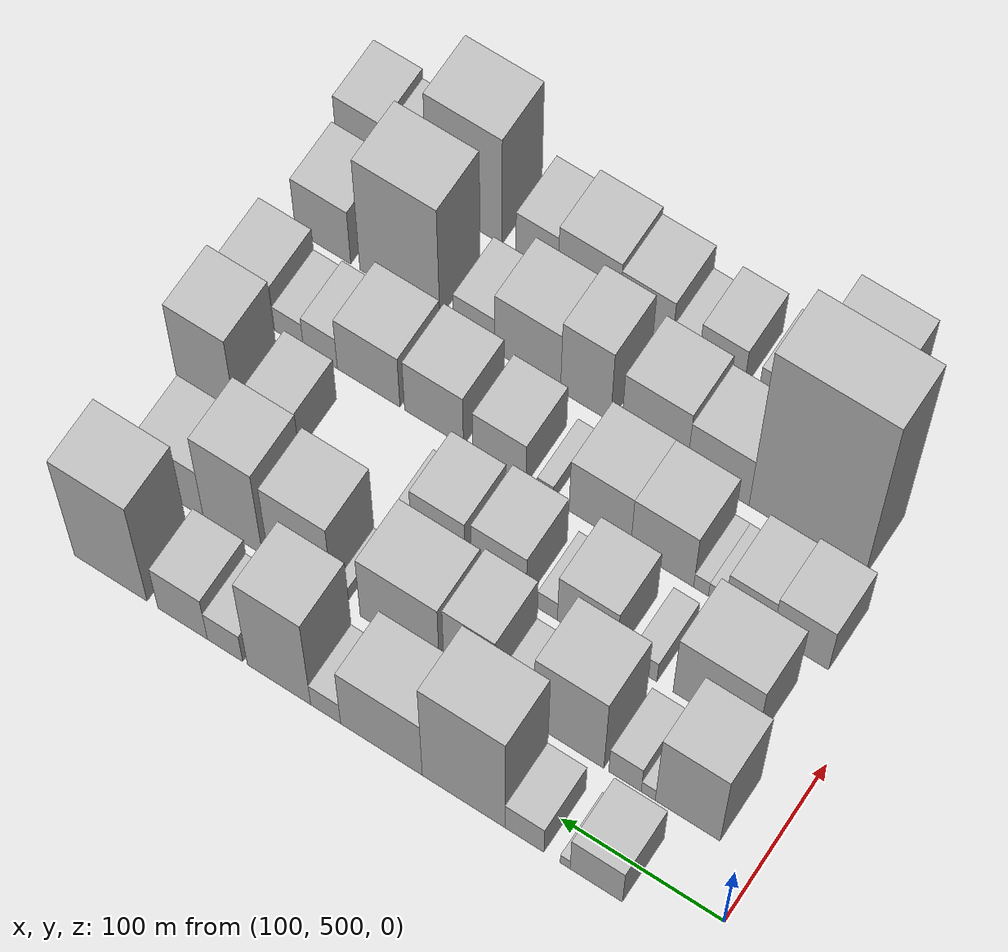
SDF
<sdf version="1.6">
 <world name="default">
  <model name="building_43">
   <static>1</static>
   <pose>100.0000 565.6743 0 0.000000 0.000000 0.000000</pose>
   <link name="link">
    <pose>0 0 27.00 0 0 0</pose>
    <collision name="collision"><geometry><box><size>40.0000 32.1906 54.0000</size></box></geometry></collision>
    <visual name="visual">
     <cast_shadows>0</cast_shadows>
     <geometry><box><size>40.0000 32.1906 54.0000</size></box></geometry>
     <material>
      <script>
       <uri>model://HANNAS_wall/materials/scripts</uri>
       <uri>model://HANNAS_wall/materials/textures</uri>
       <name>vrc/HANNAS_wall</name>
      </script>
     </material>
    </visual>
   </link>
  </model>
  <model name="building_44">
   <static>1</static>
   <pose>100.0000 584.8104 0 0.000000 0.000000 0.000000</pose>
   <link name="link">
    <pose>0 0 7.50 0 0 0</pose>
    <collision name="collision"><geometry><box><size>40.0000 6.0816 15.0000</size></box></geometry></collision>
    <visual name="visual">
     <cast_shadows>0</cast_shadows>
     <geometry><box><size>40.0000 6.0816 15.0000</size></box></geometry>
     <material>
      <script>
       <uri>model://HANNAS_wall/materials/scripts</uri>
       <uri>model://HANNAS_wall/materials/textures</uri>
       <name>vrc/HANNAS_wall</name>
      </script>
     </material>
    </visual>
   </link>
  </model>
  <model name="building_45">
   <static>1</static>
   <pose>100.0000 609.8713 0 0.000000 0.000000 0.000000</pose>
   <link name="link">
    <pose>0 0 21.00 0 0 0</pose>
    <collision name="collision"><geometry><box><size>40.0000 24.0401 42.0000</size></box></geometry></collision>
    <visual name="visual">
     <cast_shadows>0</cast_shadows>
     <geometry><box><size>40.0000 24.0401 42.0000</size></box></geometry>
     <material>
      <script>
       <uri>model://HANNAS_wall/materials/scripts</uri>
       <uri>model://HANNAS_wall/materials/textures</uri>
       <name>vrc/HANNAS_wall</name>
      </script>
     </material>
    </visual>
   </link>
  </model>
  <model name="building_46">
   <static>1</static>
   <pose>100.0000 647.6481 0 0.000000 0.000000 0.000000</pose>
   <link name="link">
    <pose>0 0 75.00 0 0 0</pose>
    <collision name="collision"><geometry><box><size>40.0000 51.5135 150.0000</size></box></geometry></collision>
    <visual name="visual">
     <cast_shadows>0</cast_shadows>
     <geometry><box><size>40.0000 51.5135 150.0000</size></box></geometry>
     <material>
      <script>
       <uri>model://HANNAS_wall/materials/scripts</uri>
       <uri>model://HANNAS_wall/materials/textures</uri>
       <name>vrc/HANNAS_wall</name>
      </script>
     </material>
    </visual>
   </link>
  </model>
  <model name="building_47">
   <static>1</static>
   <pose>100.0000 699.0463 0 0.000000 0.000000 0.000000</pose>
   <link name="link">
    <pose>0 0 43.50 0 0 0</pose>
    <collision name="collision"><geometry><box><size>40.0000 51.2830 87.0000</size></box></geometry></collision>
    <visual name="visual">
     <cast_shadows>0</cast_shadows>
     <geometry><box><size>40.0000 51.2830 87.0000</size></box></geometry>
     <material>
      <script>
       <uri>model://HANNAS_wall/materials/scripts</uri>
       <uri>model://HANNAS_wall/materials/textures</uri>
       <name>vrc/HANNAS_wall</name>
      </script>
     </material>
    </visual>
   </link>
  </model>
  <model name="building_48">
   <static>1</static>
   <pose>100.0000 734.1501 0 0.000000 0.000000 0.000000</pose>
   <link name="link">
    <pose>0 0 16.50 0 0 0</pose>
    <collision name="collision"><geometry><box><size>40.0000 18.9245 33.0000</size></box></geometry></collision>
    <visual name="visual">
     <cast_shadows>0</cast_shadows>
     <geometry><box><size>40.0000 18.9245 33.0000</size></box></geometry>
     <material>
      <script>
       <uri>model://HANNAS_wall/materials/scripts</uri>
       <uri>model://HANNAS_wall/materials/textures</uri>
       <name>vrc/HANNAS_wall</name>
      </script>
     </material>
    </visual>
   </link>
  </model>
  <model name="building_49">
   <static>1</static>
   <pose>100.0000 763.7258 0 0.000000 0.000000 0.000000</pose>
   <link name="link">
    <pose>0 0 66.00 0 0 0</pose>
    <collision name="collision"><geometry><box><size>40.0000 40.2271 132.0000</size></box></geometry></collision>
    <visual name="visual">
     <cast_shadows>0</cast_shadows>
     <geometry><box><size>40.0000 40.2271 132.0000</size></box></geometry>
     <material>
      <script>
       <uri>model://HANNAS_wall/materials/scripts</uri>
       <uri>model://HANNAS_wall/materials/textures</uri>
       <name>vrc/HANNAS_wall</name>
      </script>
     </material>
    </visual>
   </link>
  </model>
  <model name="building_50">
   <static>1</static>
   <pose>100.0000 798.1273 0 0.000000 0.000000 0.000000</pose>
   <link name="link">
    <pose>0 0 21.00 0 0 0</pose>
    <collision name="collision"><geometry><box><size>40.0000 22.5759 42.0000</size></box></geometry></collision>
    <visual name="visual">
     <cast_shadows>0</cast_shadows>
     <geometry><box><size>40.0000 22.5759 42.0000</size></box></geometry>
     <material>
      <script>
       <uri>model://HANNAS_wall/materials/scripts</uri>
       <uri>model://HANNAS_wall/materials/textures</uri>
       <name>vrc/HANNAS_wall</name>
      </script>
     </material>
    </visual>
   </link>
  </model>
  <model name="building_51">
   <static>1</static>
   <pose>100.0000 825.2899 0 0.000000 0.000000 0.000000</pose>
   <link name="link">
    <pose>0 0 31.50 0 0 0</pose>
    <collision name="collision"><geometry><box><size>40.0000 31.7492 63.0000</size></box></geometry></collision>
    <visual name="visual">
     <cast_shadows>0</cast_shadows>
     <geometry><box><size>40.0000 31.7492 63.0000</size></box></geometry>
     <material>
      <script>
       <uri>model://HANNAS_wall/materials/scripts</uri>
       <uri>model://HANNAS_wall/materials/textures</uri>
       <name>vrc/HANNAS_wall</name>
      </script>
     </material>
    </visual>
   </link>
  </model>
  <model name="building_52">
   <static>1</static>
   <pose>100.0000 871.6478 0 0.000000 0.000000 0.000000</pose>
   <link name="link">
    <pose>0 0 72.00 0 0 0</pose>
    <collision name="collision"><geometry><box><size>40.0000 46.9665 144.0000</size></box></geometry></collision>
    <visual name="visual">
     <cast_shadows>0</cast_shadows>
     <geometry><box><size>40.0000 46.9665 144.0000</size></box></geometry>
     <material>
      <script>
       <uri>model://HANNAS_wall/materials/scripts</uri>
       <uri>model://HANNAS_wall/materials/textures</uri>
       <name>vrc/HANNAS_wall</name>
      </script>
     </material>
    </visual>
   </link>
  </model>
  <model name="building_100">
   <static>1</static>
   <pose>155.0000 544.5997 0 0.000000 0.000000 0.000000</pose>
   <link name="link">
    <pose>0 0 54.00 0 0 0</pose>
    <collision name="collision"><geometry><box><size>40.0000 39.9034 108.0000</size></box></geometry></collision>
    <visual name="visual">
     <cast_shadows>0</cast_shadows>
     <geometry><box><size>40.0000 39.9034 108.0000</size></box></geometry>
     <material>
      <script>
       <uri>model://HANNAS_wall/materials/scripts</uri>
       <uri>model://HANNAS_wall/materials/textures</uri>
       <name>vrc/HANNAS_wall</name>
      </script>
     </material>
    </visual>
   </link>
  </model>
  <model name="building_101">
   <static>1</static>
   <pose>155.0000 568.8679 0 0.000000 0.000000 0.000000</pose>
   <link name="link">
    <pose>0 0 9.00 0 0 0</pose>
    <collision name="collision"><geometry><box><size>40.0000 8.6330 18.0000</size></box></geometry></collision>
    <visual name="visual">
     <cast_shadows>0</cast_shadows>
     <geometry><box><size>40.0000 8.6330 18.0000</size></box></geometry>
     <material>
      <script>
       <uri>model://HANNAS_wall/materials/scripts</uri>
       <uri>model://HANNAS_wall/materials/textures</uri>
       <name>vrc/HANNAS_wall</name>
      </script>
     </material>
    </visual>
   </link>
  </model>
  <model name="building_102">
   <static>1</static>
   <pose>155.0000 583.2130 0 0.000000 0.000000 0.000000</pose>
   <link name="link">
    <pose>0 0 19.50 0 0 0</pose>
    <collision name="collision"><geometry><box><size>40.0000 20.0573 39.0000</size></box></geometry></collision>
    <visual name="visual">
     <cast_shadows>0</cast_shadows>
     <geometry><box><size>40.0000 20.0573 39.0000</size></box></geometry>
     <material>
      <script>
       <uri>model://HANNAS_wall/materials/scripts</uri>
       <uri>model://HANNAS_wall/materials/textures</uri>
       <name>vrc/HANNAS_wall</name>
      </script>
     </material>
    </visual>
   </link>
  </model>
  <model name="building_103">
   <static>1</static>
   <pose>155.0000 618.1968 0 0.000000 0.000000 0.000000</pose>
   <link name="link">
    <pose>0 0 55.50 0 0 0</pose>
    <collision name="collision"><geometry><box><size>40.0000 43.9105 111.0000</size></box></geometry></collision>
    <visual name="visual">
     <cast_shadows>0</cast_shadows>
     <geometry><box><size>40.0000 43.9105 111.0000</size></box></geometry>
     <material>
      <script>
       <uri>model://HANNAS_wall/materials/scripts</uri>
       <uri>model://HANNAS_wall/materials/textures</uri>
       <name>vrc/HANNAS_wall</name>
      </script>
     </material>
    </visual>
   </link>
  </model>
  <model name="building_104">
   <static>1</static>
   <pose>155.0000 653.5664 0 0.000000 0.000000 0.000000</pose>
   <link name="link">
    <pose>0 0 18.00 0 0 0</pose>
    <collision name="collision"><geometry><box><size>40.0000 20.8287 36.0000</size></box></geometry></collision>
    <visual name="visual">
     <cast_shadows>0</cast_shadows>
     <geometry><box><size>40.0000 20.8287 36.0000</size></box></geometry>
     <material>
      <script>
       <uri>model://HANNAS_wall/materials/scripts</uri>
       <uri>model://HANNAS_wall/materials/textures</uri>
       <name>vrc/HANNAS_wall</name>
      </script>
     </material>
    </visual>
   </link>
  </model>
  <model name="building_105">
   <static>1</static>
   <pose>155.0000 680.0605 0 0.000000 0.000000 0.000000</pose>
   <link name="link">
    <pose>0 0 48.00 0 0 0</pose>
    <collision name="collision"><geometry><box><size>40.0000 32.1594 96.0000</size></box></geometry></collision>
    <visual name="visual">
     <cast_shadows>0</cast_shadows>
     <geometry><box><size>40.0000 32.1594 96.0000</size></box></geometry>
     <material>
      <script>
       <uri>model://HANNAS_wall/materials/scripts</uri>
       <uri>model://HANNAS_wall/materials/textures</uri>
       <name>vrc/HANNAS_wall</name>
      </script>
     </material>
    </visual>
   </link>
  </model>
  <model name="building_106">
   <static>1</static>
   <pose>155.0000 724.1629 0 0.000000 0.000000 0.000000</pose>
   <link name="link">
    <pose>0 0 45.00 0 0 0</pose>
    <collision name="collision"><geometry><box><size>40.0000 50.0453 90.0000</size></box></geometry></collision>
    <visual name="visual">
     <cast_shadows>0</cast_shadows>
     <geometry><box><size>40.0000 50.0453 90.0000</size></box></geometry>
     <material>
      <script>
       <uri>model://HANNAS_wall/materials/scripts</uri>
       <uri>model://HANNAS_wall/materials/textures</uri>
       <name>vrc/HANNAS_wall</name>
      </script>
     </material>
    </visual>
   </link>
  </model>
  <model name="building_107">
   <static>1</static>
   <pose>155.0000 762.9316 0 0.000000 0.000000 0.000000</pose>
   <link name="link">
    <pose>0 0 9.00 0 0 0</pose>
    <collision name="collision"><geometry><box><size>40.0000 7.4922 18.0000</size></box></geometry></collision>
    <visual name="visual">
     <cast_shadows>0</cast_shadows>
     <geometry><box><size>40.0000 7.4922 18.0000</size></box></geometry>
     <material>
      <script>
       <uri>model://HANNAS_wall/materials/scripts</uri>
       <uri>model://HANNAS_wall/materials/textures</uri>
       <name>vrc/HANNAS_wall</name>
      </script>
     </material>
    </visual>
   </link>
  </model>
  <model name="building_108">
   <static>1</static>
   <pose>155.0000 787.2311 0 0.000000 0.000000 0.000000</pose>
   <link name="link">
    <pose>0 0 54.00 0 0 0</pose>
    <collision name="collision"><geometry><box><size>40.0000 41.1067 108.0000</size></box></geometry></collision>
    <visual name="visual">
     <cast_shadows>0</cast_shadows>
     <geometry><box><size>40.0000 41.1067 108.0000</size></box></geometry>
     <material>
      <script>
       <uri>model://HANNAS_wall/materials/scripts</uri>
       <uri>model://HANNAS_wall/materials/textures</uri>
       <name>vrc/HANNAS_wall</name>
      </script>
     </material>
    </visual>
   </link>
  </model>
  <model name="building_109">
   <static>1</static>
   <pose>155.0000 830.8037 0 0.000000 0.000000 0.000000</pose>
   <link name="link">
    <pose>0 0 60.00 0 0 0</pose>
    <collision name="collision"><geometry><box><size>40.0000 38.0385 120.0000</size></box></geometry></collision>
    <visual name="visual">
     <cast_shadows>0</cast_shadows>
     <geometry><box><size>40.0000 38.0385 120.0000</size></box></geometry>
     <material>
      <script>
       <uri>model://HANNAS_wall/materials/scripts</uri>
       <uri>model://HANNAS_wall/materials/textures</uri>
       <name>vrc/HANNAS_wall</name>
      </script>
     </material>
    </visual>
   </link>
  </model>
  <model name="building_110">
   <static>1</static>
   <pose>155.0000 869.2071 0 0.000000 0.000000 0.000000</pose>
   <link name="link">
    <pose>0 0 34.50 0 0 0</pose>
    <collision name="collision"><geometry><box><size>40.0000 38.7683 69.0000</size></box></geometry></collision>
    <visual name="visual">
     <cast_shadows>0</cast_shadows>
     <geometry><box><size>40.0000 38.7683 69.0000</size></box></geometry>
     <material>
      <script>
       <uri>model://HANNAS_wall/materials/scripts</uri>
       <uri>model://HANNAS_wall/materials/textures</uri>
       <name>vrc/HANNAS_wall</name>
      </script>
     </material>
    </visual>
   </link>
  </model>
  <model name="building_111">
   <static>1</static>
   <pose>155.0000 892.3155 0 0.000000 0.000000 0.000000</pose>
   <link name="link">
    <pose>0 0 9.00 0 0 0</pose>
    <collision name="collision"><geometry><box><size>40.0000 7.4485 18.0000</size></box></geometry></collision>
    <visual name="visual">
     <cast_shadows>0</cast_shadows>
     <geometry><box><size>40.0000 7.4485 18.0000</size></box></geometry>
     <material>
      <script>
       <uri>model://HANNAS_wall/materials/scripts</uri>
       <uri>model://HANNAS_wall/materials/textures</uri>
       <name>vrc/HANNAS_wall</name>
      </script>
     </material>
    </visual>
   </link>
  </model>
  <model name="building_153">
   <static>1</static>
   <pose>210.0000 562.4743 0 0.000000 0.000000 0.000000</pose>
   <link name="link">
    <pose>0 0 43.50 0 0 0</pose>
    <collision name="collision"><geometry><box><size>40.0000 51.7983 87.0000</size></box></geometry></collision>
    <visual name="visual">
     <cast_shadows>0</cast_shadows>
     <geometry><box><size>40.0000 51.7983 87.0000</size></box></geometry>
     <material>
      <script>
       <uri>model://HANNAS_wall/materials/scripts</uri>
       <uri>model://HANNAS_wall/materials/textures</uri>
       <name>vrc/HANNAS_wall</name>
      </script>
     </material>
    </visual>
   </link>
  </model>
  <model name="building_154">
   <static>1</static>
   <pose>210.0000 606.4524 0 0.000000 0.000000 0.000000</pose>
   <link name="link">
    <pose>0 0 15.00 0 0 0</pose>
    <collision name="collision"><geometry><box><size>40.0000 16.1579 30.0000</size></box></geometry></collision>
    <visual name="visual">
     <cast_shadows>0</cast_shadows>
     <geometry><box><size>40.0000 16.1579 30.0000</size></box></geometry>
     <material>
      <script>
       <uri>model://HANNAS_wall/materials/scripts</uri>
       <uri>model://HANNAS_wall/materials/textures</uri>
       <name>vrc/HANNAS_wall</name>
      </script>
     </material>
    </visual>
   </link>
  </model>
  <model name="building_155">
   <static>1</static>
   <pose>210.0000 642.1052 0 0.000000 0.000000 0.000000</pose>
   <link name="link">
    <pose>0 0 34.50 0 0 0</pose>
    <collision name="collision"><geometry><box><size>40.0000 37.1477 69.0000</size></box></geometry></collision>
    <visual name="visual">
     <cast_shadows>0</cast_shadows>
     <geometry><box><size>40.0000 37.1477 69.0000</size></box></geometry>
     <material>
      <script>
       <uri>model://HANNAS_wall/materials/scripts</uri>
       <uri>model://HANNAS_wall/materials/textures</uri>
       <name>vrc/HANNAS_wall</name>
      </script>
     </material>
    </visual>
   </link>
  </model>
  <model name="building_156">
   <static>1</static>
   <pose>210.0000 666.9940 0 0.000000 0.000000 0.000000</pose>
   <link name="link">
    <pose>0 0 13.50 0 0 0</pose>
    <collision name="collision"><geometry><box><size>40.0000 12.6298 27.0000</size></box></geometry></collision>
    <visual name="visual">
     <cast_shadows>0</cast_shadows>
     <geometry><box><size>40.0000 12.6298 27.0000</size></box></geometry>
     <material>
      <script>
       <uri>model://HANNAS_wall/materials/scripts</uri>
       <uri>model://HANNAS_wall/materials/textures</uri>
       <name>vrc/HANNAS_wall</name>
      </script>
     </material>
    </visual>
   </link>
  </model>
  <model name="building_157">
   <static>1</static>
   <pose>210.0000 697.7016 0 0.000000 0.000000 0.000000</pose>
   <link name="link">
    <pose>0 0 33.00 0 0 0</pose>
    <collision name="collision"><geometry><box><size>40.0000 34.7854 66.0000</size></box></geometry></collision>
    <visual name="visual">
     <cast_shadows>0</cast_shadows>
     <geometry><box><size>40.0000 34.7854 66.0000</size></box></geometry>
     <material>
      <script>
       <uri>model://HANNAS_wall/materials/scripts</uri>
       <uri>model://HANNAS_wall/materials/textures</uri>
       <name>vrc/HANNAS_wall</name>
      </script>
     </material>
    </visual>
   </link>
  </model>
  <model name="building_158">
   <static>1</static>
   <pose>210.0000 736.3180 0 0.000000 0.000000 0.000000</pose>
   <link name="link">
    <pose>0 0 30.00 0 0 0</pose>
    <collision name="collision"><geometry><box><size>40.0000 34.4473 60.0000</size></box></geometry></collision>
    <visual name="visual">
     <cast_shadows>0</cast_shadows>
     <geometry><box><size>40.0000 34.4473 60.0000</size></box></geometry>
     <material>
      <script>
       <uri>model://HANNAS_wall/materials/scripts</uri>
       <uri>model://HANNAS_wall/materials/textures</uri>
       <name>vrc/HANNAS_wall</name>
      </script>
     </material>
    </visual>
   </link>
  </model>
  <model name="building_159">
   <static>1</static>
   <pose>210.0000 762.0292 0 0.000000 0.000000 0.000000</pose>
   <link name="link">
    <pose>0 0 7.50 0 0 0</pose>
    <collision name="collision"><geometry><box><size>40.0000 6.9751 15.0000</size></box></geometry></collision>
    <visual name="visual">
     <cast_shadows>0</cast_shadows>
     <geometry><box><size>40.0000 6.9751 15.0000</size></box></geometry>
     <material>
      <script>
       <uri>model://HANNAS_wall/materials/scripts</uri>
       <uri>model://HANNAS_wall/materials/textures</uri>
       <name>vrc/HANNAS_wall</name>
      </script>
     </material>
    </visual>
   </link>
  </model>
  <model name="building_160">
   <static>1</static>
   <pose>210.0000 843.7794 0 0.000000 0.000000 0.000000</pose>
   <link name="link">
    <pose>0 0 28.50 0 0 0</pose>
    <collision name="collision"><geometry><box><size>40.0000 30.8418 57.0000</size></box></geometry></collision>
    <visual name="visual">
     <cast_shadows>0</cast_shadows>
     <geometry><box><size>40.0000 30.8418 57.0000</size></box></geometry>
     <material>
      <script>
       <uri>model://HANNAS_wall/materials/scripts</uri>
       <uri>model://HANNAS_wall/materials/textures</uri>
       <name>vrc/HANNAS_wall</name>
      </script>
     </material>
    </visual>
   </link>
  </model>
  <model name="building_161">
   <static>1</static>
   <pose>210.0000 885.2288 0 0.000000 0.000000 0.000000</pose>
   <link name="link">
    <pose>0 0 57.00 0 0 0</pose>
    <collision name="collision"><geometry><box><size>40.0000 38.0569 114.0000</size></box></geometry></collision>
    <visual name="visual">
     <cast_shadows>0</cast_shadows>
     <geometry><box><size>40.0000 38.0569 114.0000</size></box></geometry>
     <material>
      <script>
       <uri>model://HANNAS_wall/materials/scripts</uri>
       <uri>model://HANNAS_wall/materials/textures</uri>
       <name>vrc/HANNAS_wall</name>
      </script>
     </material>
    </visual>
   </link>
  </model>
  <model name="building_201">
   <static>1</static>
   <pose>265.0000 543.5369 0 0.000000 0.000000 0.000000</pose>
   <link name="link">
    <pose>0 0 30.00 0 0 0</pose>
    <collision name="collision"><geometry><box><size>40.0000 34.6271 60.0000</size></box></geometry></collision>
    <visual name="visual">
     <cast_shadows>0</cast_shadows>
     <geometry><box><size>40.0000 34.6271 60.0000</size></box></geometry>
     <material>
      <script>
       <uri>model://HANNAS_wall/materials/scripts</uri>
       <uri>model://HANNAS_wall/materials/textures</uri>
       <name>vrc/HANNAS_wall</name>
      </script>
     </material>
    </visual>
   </link>
  </model>
  <model name="building_202">
   <static>1</static>
   <pose>265.0000 575.7019 0 0.000000 0.000000 0.000000</pose>
   <link name="link">
    <pose>0 0 25.50 0 0 0</pose>
    <collision name="collision"><geometry><box><size>40.0000 29.7029 51.0000</size></box></geometry></collision>
    <visual name="visual">
     <cast_shadows>0</cast_shadows>
     <geometry><box><size>40.0000 29.7029 51.0000</size></box></geometry>
     <material>
      <script>
       <uri>model://HANNAS_wall/materials/scripts</uri>
       <uri>model://HANNAS_wall/materials/textures</uri>
       <name>vrc/HANNAS_wall</name>
      </script>
     </material>
    </visual>
   </link>
  </model>
  <model name="building_203">
   <static>1</static>
   <pose>265.0000 595.7641 0 0.000000 0.000000 0.000000</pose>
   <link name="link">
    <pose>0 0 10.50 0 0 0</pose>
    <collision name="collision"><geometry><box><size>40.0000 10.4216 21.0000</size></box></geometry></collision>
    <visual name="visual">
     <cast_shadows>0</cast_shadows>
     <geometry><box><size>40.0000 10.4216 21.0000</size></box></geometry>
     <material>
      <script>
       <uri>model://HANNAS_wall/materials/scripts</uri>
       <uri>model://HANNAS_wall/materials/textures</uri>
       <name>vrc/HANNAS_wall</name>
      </script>
     </material>
    </visual>
   </link>
  </model>
  <model name="building_204">
   <static>1</static>
   <pose>265.0000 605.6155 0 0.000000 0.000000 0.000000</pose>
   <link name="link">
    <pose>0 0 10.50 0 0 0</pose>
    <collision name="collision"><geometry><box><size>40.0000 9.2812 21.0000</size></box></geometry></collision>
    <visual name="visual">
     <cast_shadows>0</cast_shadows>
     <geometry><box><size>40.0000 9.2812 21.0000</size></box></geometry>
     <material>
      <script>
       <uri>model://HANNAS_wall/materials/scripts</uri>
       <uri>model://HANNAS_wall/materials/textures</uri>
       <name>vrc/HANNAS_wall</name>
      </script>
     </material>
    </visual>
   </link>
  </model>
  <model name="building_205">
   <static>1</static>
   <pose>265.0000 630.0678 0 0.000000 0.000000 0.000000</pose>
   <link name="link">
    <pose>0 0 37.50 0 0 0</pose>
    <collision name="collision"><geometry><box><size>40.0000 39.6232 75.0000</size></box></geometry></collision>
    <visual name="visual">
     <cast_shadows>0</cast_shadows>
     <geometry><box><size>40.0000 39.6232 75.0000</size></box></geometry>
     <material>
      <script>
       <uri>model://HANNAS_wall/materials/scripts</uri>
       <uri>model://HANNAS_wall/materials/textures</uri>
       <name>vrc/HANNAS_wall</name>
      </script>
     </material>
    </visual>
   </link>
  </model>
  <model name="building_206">
   <static>1</static>
   <pose>265.0000 669.3804 0 0.000000 0.000000 0.000000</pose>
   <link name="link">
    <pose>0 0 37.50 0 0 0</pose>
    <collision name="collision"><geometry><box><size>40.0000 39.0020 75.0000</size></box></geometry></collision>
    <visual name="visual">
     <cast_shadows>0</cast_shadows>
     <geometry><box><size>40.0000 39.0020 75.0000</size></box></geometry>
     <material>
      <script>
       <uri>model://HANNAS_wall/materials/scripts</uri>
       <uri>model://HANNAS_wall/materials/textures</uri>
       <name>vrc/HANNAS_wall</name>
      </script>
     </material>
    </visual>
   </link>
  </model>
  <model name="building_207">
   <static>1</static>
   <pose>265.0000 704.0344 0 0.000000 0.000000 0.000000</pose>
   <link name="link">
    <pose>0 0 10.50 0 0 0</pose>
    <collision name="collision"><geometry><box><size>40.0000 10.3061 21.0000</size></box></geometry></collision>
    <visual name="visual">
     <cast_shadows>0</cast_shadows>
     <geometry><box><size>40.0000 10.3061 21.0000</size></box></geometry>
     <material>
      <script>
       <uri>model://HANNAS_wall/materials/scripts</uri>
       <uri>model://HANNAS_wall/materials/textures</uri>
       <name>vrc/HANNAS_wall</name>
      </script>
     </material>
    </visual>
   </link>
  </model>
  <model name="building_208">
   <static>1</static>
   <pose>265.0000 733.2397 0 0.000000 0.000000 0.000000</pose>
   <link name="link">
    <pose>0 0 28.50 0 0 0</pose>
    <collision name="collision"><geometry><box><size>40.0000 34.1044 57.0000</size></box></geometry></collision>
    <visual name="visual">
     <cast_shadows>0</cast_shadows>
     <geometry><box><size>40.0000 34.1044 57.0000</size></box></geometry>
     <material>
      <script>
       <uri>model://HANNAS_wall/materials/scripts</uri>
       <uri>model://HANNAS_wall/materials/textures</uri>
       <name>vrc/HANNAS_wall</name>
      </script>
     </material>
    </visual>
   </link>
  </model>
  <model name="building_209">
   <static>1</static>
   <pose>265.0000 775.2725 0 0.000000 0.000000 0.000000</pose>
   <link name="link">
    <pose>0 0 34.50 0 0 0</pose>
    <collision name="collision"><geometry><box><size>40.0000 37.9612 69.0000</size></box></geometry></collision>
    <visual name="visual">
     <cast_shadows>0</cast_shadows>
     <geometry><box><size>40.0000 37.9612 69.0000</size></box></geometry>
     <material>
      <script>
       <uri>model://HANNAS_wall/materials/scripts</uri>
       <uri>model://HANNAS_wall/materials/textures</uri>
       <name>vrc/HANNAS_wall</name>
      </script>
     </material>
    </visual>
   </link>
  </model>
  <model name="building_210">
   <static>1</static>
   <pose>265.0000 817.5588 0 0.000000 0.000000 0.000000</pose>
   <link name="link">
    <pose>0 0 34.50 0 0 0</pose>
    <collision name="collision"><geometry><box><size>40.0000 40.6115 69.0000</size></box></geometry></collision>
    <visual name="visual">
     <cast_shadows>0</cast_shadows>
     <geometry><box><size>40.0000 40.6115 69.0000</size></box></geometry>
     <material>
      <script>
       <uri>model://HANNAS_wall/materials/scripts</uri>
       <uri>model://HANNAS_wall/materials/textures</uri>
       <name>vrc/HANNAS_wall</name>
      </script>
     </material>
    </visual>
   </link>
  </model>
  <model name="building_211">
   <static>1</static>
   <pose>265.0000 848.9363 0 0.000000 0.000000 0.000000</pose>
   <link name="link">
    <pose>0 0 21.00 0 0 0</pose>
    <collision name="collision"><geometry><box><size>40.0000 22.1434 42.0000</size></box></geometry></collision>
    <visual name="visual">
     <cast_shadows>0</cast_shadows>
     <geometry><box><size>40.0000 22.1434 42.0000</size></box></geometry>
     <material>
      <script>
       <uri>model://HANNAS_wall/materials/scripts</uri>
       <uri>model://HANNAS_wall/materials/textures</uri>
       <name>vrc/HANNAS_wall</name>
      </script>
     </material>
    </visual>
   </link>
  </model>
  <model name="building_212">
   <static>1</static>
   <pose>265.0000 869.4778 0 0.000000 0.000000 0.000000</pose>
   <link name="link">
    <pose>0 0 16.50 0 0 0</pose>
    <collision name="collision"><geometry><box><size>40.0000 18.9397 33.0000</size></box></geometry></collision>
    <visual name="visual">
     <cast_shadows>0</cast_shadows>
     <geometry><box><size>40.0000 18.9397 33.0000</size></box></geometry>
     <material>
      <script>
       <uri>model://HANNAS_wall/materials/scripts</uri>
       <uri>model://HANNAS_wall/materials/textures</uri>
       <name>vrc/HANNAS_wall</name>
      </script>
     </material>
    </visual>
   </link>
  </model>
  <model name="building_213">
   <static>1</static>
   <pose>265.0000 895.8958 0 0.000000 0.000000 0.000000</pose>
   <link name="link">
    <pose>0 0 30.00 0 0 0</pose>
    <collision name="collision"><geometry><box><size>40.0000 33.8962 60.0000</size></box></geometry></collision>
    <visual name="visual">
     <cast_shadows>0</cast_shadows>
     <geometry><box><size>40.0000 33.8962 60.0000</size></box></geometry>
     <material>
      <script>
       <uri>model://HANNAS_wall/materials/scripts</uri>
       <uri>model://HANNAS_wall/materials/textures</uri>
       <name>vrc/HANNAS_wall</name>
      </script>
     </material>
    </visual>
   </link>
  </model>
  <model name="building_257">
   <static>1</static>
   <pose>320.0000 573.6335 0 0.000000 0.000000 0.000000</pose>
   <link name="link">
    <pose>0 0 109.50 0 0 0</pose>
    <collision name="collision"><geometry><box><size>40.0000 72.6716 219.0000</size></box></geometry></collision>
    <visual name="visual">
     <cast_shadows>0</cast_shadows>
     <geometry><box><size>40.0000 72.6716 219.0000</size></box></geometry>
     <material>
      <script>
       <uri>model://HANNAS_wall/materials/scripts</uri>
       <uri>model://HANNAS_wall/materials/textures</uri>
       <name>vrc/HANNAS_wall</name>
      </script>
     </material>
    </visual>
   </link>
  </model>
  <model name="building_258">
   <static>1</static>
   <pose>320.0000 629.5012 0 0.000000 0.000000 0.000000</pose>
   <link name="link">
    <pose>0 0 33.00 0 0 0</pose>
    <collision name="collision"><geometry><box><size>40.0000 39.0638 66.0000</size></box></geometry></collision>
    <visual name="visual">
     <cast_shadows>0</cast_shadows>
     <geometry><box><size>40.0000 39.0638 66.0000</size></box></geometry>
     <material>
      <script>
       <uri>model://HANNAS_wall/materials/scripts</uri>
       <uri>model://HANNAS_wall/materials/textures</uri>
       <name>vrc/HANNAS_wall</name>
      </script>
     </material>
    </visual>
   </link>
  </model>
  <model name="building_259">
   <static>1</static>
   <pose>320.0000 669.8929 0 0.000000 0.000000 0.000000</pose>
   <link name="link">
    <pose>0 0 39.00 0 0 0</pose>
    <collision name="collision"><geometry><box><size>40.0000 41.7194 78.0000</size></box></geometry></collision>
    <visual name="visual">
     <cast_shadows>0</cast_shadows>
     <geometry><box><size>40.0000 41.7194 78.0000</size></box></geometry>
     <material>
      <script>
       <uri>model://HANNAS_wall/materials/scripts</uri>
       <uri>model://HANNAS_wall/materials/textures</uri>
       <name>vrc/HANNAS_wall</name>
      </script>
     </material>
    </visual>
   </link>
  </model>
  <model name="building_260">
   <static>1</static>
   <pose>320.0000 713.7926 0 0.000000 0.000000 0.000000</pose>
   <link name="link">
    <pose>0 0 48.00 0 0 0</pose>
    <collision name="collision"><geometry><box><size>40.0000 32.0801 96.0000</size></box></geometry></collision>
    <visual name="visual">
     <cast_shadows>0</cast_shadows>
     <geometry><box><size>40.0000 32.0801 96.0000</size></box></geometry>
     <material>
      <script>
       <uri>model://HANNAS_wall/materials/scripts</uri>
       <uri>model://HANNAS_wall/materials/textures</uri>
       <name>vrc/HANNAS_wall</name>
      </script>
     </material>
    </visual>
   </link>
  </model>
  <model name="building_261">
   <static>1</static>
   <pose>320.0000 751.0311 0 0.000000 0.000000 0.000000</pose>
   <link name="link">
    <pose>0 0 39.00 0 0 0</pose>
    <collision name="collision"><geometry><box><size>40.0000 42.3968 78.0000</size></box></geometry></collision>
    <visual name="visual">
     <cast_shadows>0</cast_shadows>
     <geometry><box><size>40.0000 42.3968 78.0000</size></box></geometry>
     <material>
      <script>
       <uri>model://HANNAS_wall/materials/scripts</uri>
       <uri>model://HANNAS_wall/materials/textures</uri>
       <name>vrc/HANNAS_wall</name>
      </script>
     </material>
    </visual>
   </link>
  </model>
  <model name="building_262">
   <static>1</static>
   <pose>320.0000 785.5178 0 0.000000 0.000000 0.000000</pose>
   <link name="link">
    <pose>0 0 22.50 0 0 0</pose>
    <collision name="collision"><geometry><box><size>40.0000 26.5767 45.0000</size></box></geometry></collision>
    <visual name="visual">
     <cast_shadows>0</cast_shadows>
     <geometry><box><size>40.0000 26.5767 45.0000</size></box></geometry>
     <material>
      <script>
       <uri>model://HANNAS_wall/materials/scripts</uri>
       <uri>model://HANNAS_wall/materials/textures</uri>
       <name>vrc/HANNAS_wall</name>
      </script>
     </material>
    </visual>
   </link>
  </model>
  <model name="building_263">
   <static>1</static>
   <pose>320.0000 833.9575 0 0.000000 0.000000 0.000000</pose>
   <link name="link">
    <pose>0 0 72.00 0 0 0</pose>
    <collision name="collision"><geometry><box><size>40.0000 52.3028 144.0000</size></box></geometry></collision>
    <visual name="visual">
     <cast_shadows>0</cast_shadows>
     <geometry><box><size>40.0000 52.3028 144.0000</size></box></geometry>
     <material>
      <script>
       <uri>model://HANNAS_wall/materials/scripts</uri>
       <uri>model://HANNAS_wall/materials/textures</uri>
       <name>vrc/HANNAS_wall</name>
      </script>
     </material>
    </visual>
   </link>
  </model>
  <model name="building_264">
   <static>1</static>
   <pose>320.0000 884.3227 0 0.000000 0.000000 0.000000</pose>
   <link name="link">
    <pose>0 0 34.50 0 0 0</pose>
    <collision name="collision"><geometry><box><size>40.0000 36.4276 69.0000</size></box></geometry></collision>
    <visual name="visual">
     <cast_shadows>0</cast_shadows>
     <geometry><box><size>40.0000 36.4276 69.0000</size></box></geometry>
     <material>
      <script>
       <uri>model://HANNAS_wall/materials/scripts</uri>
       <uri>model://HANNAS_wall/materials/textures</uri>
       <name>vrc/HANNAS_wall</name>
      </script>
     </material>
    </visual>
   </link>
  </model>
  <model name="building_303">
   <static>1</static>
   <pose>375.0000 586.5447 0 0.000000 0.000000 0.000000</pose>
   <link name="link">
    <pose>0 0 64.50 0 0 0</pose>
    <collision name="collision"><geometry><box><size>40.0000 46.5795 129.0000</size></box></geometry></collision>
    <visual name="visual">
     <cast_shadows>0</cast_shadows>
     <geometry><box><size>40.0000 46.5795 129.0000</size></box></geometry>
     <material>
      <script>
       <uri>model://HANNAS_wall/materials/scripts</uri>
       <uri>model://HANNAS_wall/materials/textures</uri>
       <name>vrc/HANNAS_wall</name>
      </script>
     </material>
    </visual>
   </link>
  </model>
  <model name="building_304">
   <static>1</static>
   <pose>375.0000 626.2397 0 0.000000 0.000000 0.000000</pose>
   <link name="link">
    <pose>0 0 22.50 0 0 0</pose>
    <collision name="collision"><geometry><box><size>40.0000 24.8104 45.0000</size></box></geometry></collision>
    <visual name="visual">
     <cast_shadows>0</cast_shadows>
     <geometry><box><size>40.0000 24.8104 45.0000</size></box></geometry>
     <material>
      <script>
       <uri>model://HANNAS_wall/materials/scripts</uri>
       <uri>model://HANNAS_wall/materials/textures</uri>
       <name>vrc/HANNAS_wall</name>
      </script>
     </material>
    </visual>
   </link>
  </model>
  <model name="building_305">
   <static>1</static>
   <pose>375.0000 662.0360 0 0.000000 0.000000 0.000000</pose>
   <link name="link">
    <pose>0 0 27.00 0 0 0</pose>
    <collision name="collision"><geometry><box><size>40.0000 28.7822 54.0000</size></box></geometry></collision>
    <visual name="visual">
     <cast_shadows>0</cast_shadows>
     <geometry><box><size>40.0000 28.7822 54.0000</size></box></geometry>
     <material>
      <script>
       <uri>model://HANNAS_wall/materials/scripts</uri>
       <uri>model://HANNAS_wall/materials/textures</uri>
       <name>vrc/HANNAS_wall</name>
      </script>
     </material>
    </visual>
   </link>
  </model>
  <model name="building_306">
   <static>1</static>
   <pose>375.0000 684.9049 0 0.000000 0.000000 0.000000</pose>
   <link name="link">
    <pose>0 0 15.00 0 0 0</pose>
    <collision name="collision"><geometry><box><size>40.0000 16.9556 30.0000</size></box></geometry></collision>
    <visual name="visual">
     <cast_shadows>0</cast_shadows>
     <geometry><box><size>40.0000 16.9556 30.0000</size></box></geometry>
     <material>
      <script>
       <uri>model://HANNAS_wall/materials/scripts</uri>
       <uri>model://HANNAS_wall/materials/textures</uri>
       <name>vrc/HANNAS_wall</name>
      </script>
     </material>
    </visual>
   </link>
  </model>
  <model name="building_307">
   <static>1</static>
   <pose>375.0000 710.3328 0 0.000000 0.000000 0.000000</pose>
   <link name="link">
    <pose>0 0 30.00 0 0 0</pose>
    <collision name="collision"><geometry><box><size>40.0000 33.9003 60.0000</size></box></geometry></collision>
    <visual name="visual">
     <cast_shadows>0</cast_shadows>
     <geometry><box><size>40.0000 33.9003 60.0000</size></box></geometry>
     <material>
      <script>
       <uri>model://HANNAS_wall/materials/scripts</uri>
       <uri>model://HANNAS_wall/materials/textures</uri>
       <name>vrc/HANNAS_wall</name>
      </script>
     </material>
    </visual>
   </link>
  </model>
  <model name="building_308">
   <static>1</static>
   <pose>375.0000 747.1151 0 0.000000 0.000000 0.000000</pose>
   <link name="link">
    <pose>0 0 34.50 0 0 0</pose>
    <collision name="collision"><geometry><box><size>40.0000 39.6642 69.0000</size></box></geometry></collision>
    <visual name="visual">
     <cast_shadows>0</cast_shadows>
     <geometry><box><size>40.0000 39.6642 69.0000</size></box></geometry>
     <material>
      <script>
       <uri>model://HANNAS_wall/materials/scripts</uri>
       <uri>model://HANNAS_wall/materials/textures</uri>
       <name>vrc/HANNAS_wall</name>
      </script>
     </material>
    </visual>
   </link>
  </model>
  <model name="building_309">
   <static>1</static>
   <pose>375.0000 780.6585 0 0.000000 0.000000 0.000000</pose>
   <link name="link">
    <pose>0 0 27.00 0 0 0</pose>
    <collision name="collision"><geometry><box><size>40.0000 27.4226 54.0000</size></box></geometry></collision>
    <visual name="visual">
     <cast_shadows>0</cast_shadows>
     <geometry><box><size>40.0000 27.4226 54.0000</size></box></geometry>
     <material>
      <script>
       <uri>model://HANNAS_wall/materials/scripts</uri>
       <uri>model://HANNAS_wall/materials/textures</uri>
       <name>vrc/HANNAS_wall</name>
      </script>
     </material>
    </visual>
   </link>
  </model>
  <model name="building_310">
   <static>1</static>
   <pose>375.0000 827.9643 0 0.000000 0.000000 0.000000</pose>
   <link name="link">
    <pose>0 0 67.50 0 0 0</pose>
    <collision name="collision"><geometry><box><size>40.0000 49.1890 135.0000</size></box></geometry></collision>
    <visual name="visual">
     <cast_shadows>0</cast_shadows>
     <geometry><box><size>40.0000 49.1890 135.0000</size></box></geometry>
     <material>
      <script>
       <uri>model://HANNAS_wall/materials/scripts</uri>
       <uri>model://HANNAS_wall/materials/textures</uri>
       <name>vrc/HANNAS_wall</name>
      </script>
     </material>
    </visual>
   </link>
  </model>
  <model name="building_311">
   <static>1</static>
   <pose>375.0000 866.6968 0 0.000000 0.000000 0.000000</pose>
   <link name="link">
    <pose>0 0 25.50 0 0 0</pose>
    <collision name="collision"><geometry><box><size>40.0000 28.2760 51.0000</size></box></geometry></collision>
    <visual name="visual">
     <cast_shadows>0</cast_shadows>
     <geometry><box><size>40.0000 28.2760 51.0000</size></box></geometry>
     <material>
      <script>
       <uri>model://HANNAS_wall/materials/scripts</uri>
       <uri>model://HANNAS_wall/materials/textures</uri>
       <name>vrc/HANNAS_wall</name>
      </script>
     </material>
    </visual>
   </link>
  </model>
  <model name="building_312">
   <static>1</static>
   <pose>375.0000 896.6796 0 0.000000 0.000000 0.000000</pose>
   <link name="link">
    <pose>0 0 31.50 0 0 0</pose>
    <collision name="collision"><geometry><box><size>40.0000 31.6895 63.0000</size></box></geometry></collision>
    <visual name="visual">
     <cast_shadows>0</cast_shadows>
     <geometry><box><size>40.0000 31.6895 63.0000</size></box></geometry>
     <material>
      <script>
       <uri>model://HANNAS_wall/materials/scripts</uri>
       <uri>model://HANNAS_wall/materials/textures</uri>
       <name>vrc/HANNAS_wall</name>
      </script>
     </material>
    </visual>
   </link>
  </model>
 </world>
</sdf>
